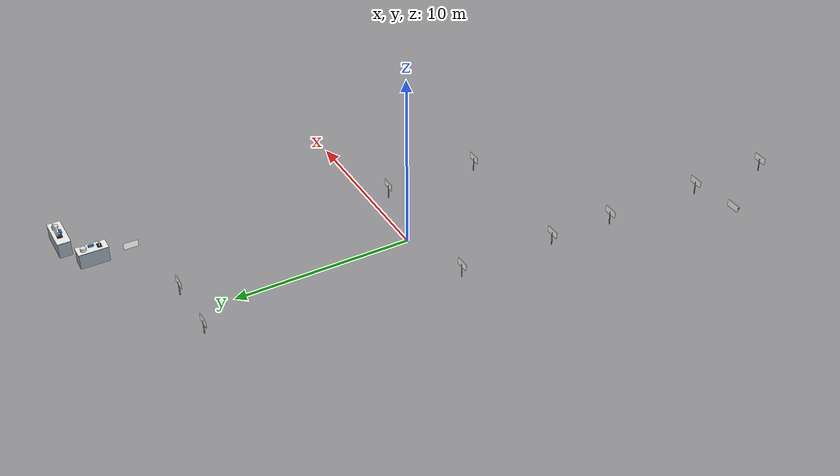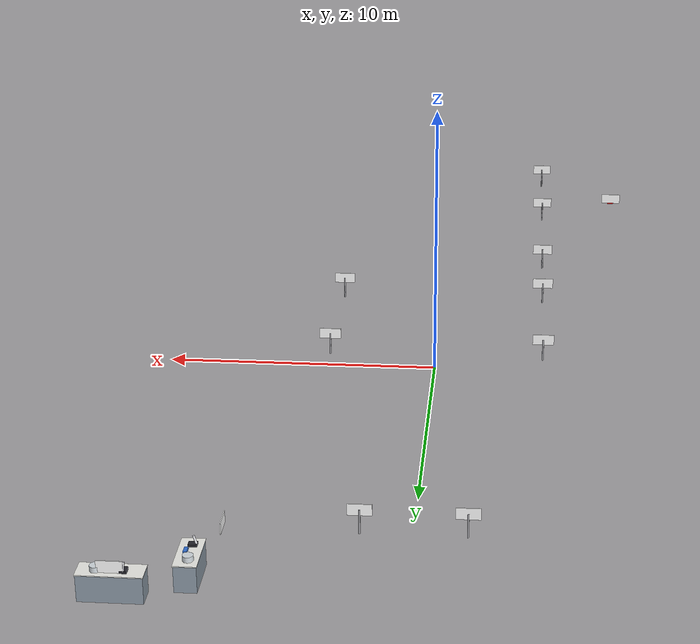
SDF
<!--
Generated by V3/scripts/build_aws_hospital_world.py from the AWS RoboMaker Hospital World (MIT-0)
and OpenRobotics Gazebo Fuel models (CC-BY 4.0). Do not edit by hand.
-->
<sdf version="1.9">
 <world name="realistic_facility_world">
  <gravity>0 0 -9.8</gravity>
  <physics name="default_physics" default="true" type="ode">
   <max_step_size>0.005</max_step_size>
   <real_time_factor>1.0</real_time_factor>
   <real_time_update_rate>200</real_time_update_rate>
  </physics>
  <plugin filename="gz-sim-physics-system" name="gz::sim::systems::Physics"/>
  <plugin filename="gz-sim-user-commands-system" name="gz::sim::systems::UserCommands"/>
  <plugin filename="gz-sim-scene-broadcaster-system" name="gz::sim::systems::SceneBroadcaster"/>
  <plugin filename="gz-sim-sensors-system" name="gz::sim::systems::Sensors">
   <render_engine>ogre2</render_engine>
  </plugin>
  <plugin filename="gz-sim-imu-system" name="gz::sim::systems::Imu"/>
  <scene>
   <ambient>0.7 0.7 0.7 1</ambient>
   <background>0.75 0.8 0.85 1</background>
   <shadows>false</shadows>
   <grid>false</grid>
  </scene>
  <light type="directional" name="sun">
   <cast_shadows>false</cast_shadows>
   <pose>0 0 30 0 0 0</pose>
   <diffuse>0.85 0.85 0.85 1</diffuse>
   <specular>0.2 0.2 0.2 1</specular>
   <direction>-0.3 0.2 -0.9</direction>
  </light>
  <model name="ground_plane">
   <static>true</static>
   <link name="link">
    <collision name="collision">
     <geometry><plane><normal>0 0 1</normal><size>200 200</size></plane></geometry>
    </collision>
   </link>
  </model>
  <light type="point" name="v3_ceiling_light_0">
   <pose>0 13 2.9 0 0 0</pose>
   <diffuse>0.55 0.55 0.52 1</diffuse>
   <specular>0.05 0.05 0.05 1</specular>
   <attenuation>
    <range>9</range>
    <constant>0.4</constant>
    <linear>0.08</linear>
    <quadratic>0.01</quadratic>
   </attenuation>
   <cast_shadows>false</cast_shadows>
  </light>
  <light type="point" name="v3_ceiling_light_1">
   <pose>0 6 2.9 0 0 0</pose>
   <diffuse>0.55 0.55 0.52 1</diffuse>
   <specular>0.05 0.05 0.05 1</specular>
   <attenuation>
    <range>9</range>
    <constant>0.4</constant>
    <linear>0.08</linear>
    <quadratic>0.01</quadratic>
   </attenuation>
   <cast_shadows>false</cast_shadows>
  </light>
  <light type="point" name="v3_ceiling_light_2">
   <pose>-5 0 2.9 0 0 0</pose>
   <diffuse>0.55 0.55 0.52 1</diffuse>
   <specular>0.05 0.05 0.05 1</specular>
   <attenuation>
    <range>9</range>
    <constant>0.4</constant>
    <linear>0.08</linear>
    <quadratic>0.01</quadratic>
   </attenuation>
   <cast_shadows>false</cast_shadows>
  </light>
  <light type="point" name="v3_ceiling_light_3">
   <pose>5 0 2.9 0 0 0</pose>
   <diffuse>0.55 0.55 0.52 1</diffuse>
   <specular>0.05 0.05 0.05 1</specular>
   <attenuation>
    <range>9</range>
    <constant>0.4</constant>
    <linear>0.08</linear>
    <quadratic>0.01</quadratic>
   </attenuation>
   <cast_shadows>false</cast_shadows>
  </light>
  <light type="point" name="v3_ceiling_light_4">
   <pose>-5 -10 2.9 0 0 0</pose>
   <diffuse>0.55 0.55 0.52 1</diffuse>
   <specular>0.05 0.05 0.05 1</specular>
   <attenuation>
    <range>9</range>
    <constant>0.4</constant>
    <linear>0.08</linear>
    <quadratic>0.01</quadratic>
   </attenuation>
   <cast_shadows>false</cast_shadows>
  </light>
  <light type="point" name="v3_ceiling_light_5">
   <pose>5 -10 2.9 0 0 0</pose>
   <diffuse>0.55 0.55 0.52 1</diffuse>
   <specular>0.05 0.05 0.05 1</specular>
   <attenuation>
    <range>9</range>
    <constant>0.4</constant>
    <linear>0.08</linear>
    <quadratic>0.01</quadratic>
   </attenuation>
   <cast_shadows>false</cast_shadows>
  </light>
  <light type="point" name="v3_ceiling_light_6">
   <pose>0 -14.5 2.9 0 0 0</pose>
   <diffuse>0.55 0.55 0.52 1</diffuse>
   <specular>0.05 0.05 0.05 1</specular>
   <attenuation>
    <range>9</range>
    <constant>0.4</constant>
    <linear>0.08</linear>
    <quadratic>0.01</quadratic>
   </attenuation>
   <cast_shadows>false</cast_shadows>
  </light>
  <light type="point" name="v3_ceiling_light_7">
   <pose>-5 -20 2.9 0 0 0</pose>
   <diffuse>0.55 0.55 0.52 1</diffuse>
   <specular>0.05 0.05 0.05 1</specular>
   <attenuation>
    <range>9</range>
    <constant>0.4</constant>
    <linear>0.08</linear>
    <quadratic>0.01</quadratic>
   </attenuation>
   <cast_shadows>false</cast_shadows>
  </light>
  <light type="point" name="v3_ceiling_light_8">
   <pose>5 -20 2.9 0 0 0</pose>
   <diffuse>0.55 0.55 0.52 1</diffuse>
   <specular>0.05 0.05 0.05 1</specular>
   <attenuation>
    <range>9</range>
    <constant>0.4</constant>
    <linear>0.08</linear>
    <quadratic>0.01</quadratic>
   </attenuation>
   <cast_shadows>false</cast_shadows>
  </light>
  <light type="point" name="v3_ceiling_light_9">
   <pose>0 -24.5 2.9 0 0 0</pose>
   <diffuse>0.55 0.55 0.52 1</diffuse>
   <specular>0.05 0.05 0.05 1</specular>
   <attenuation>
    <range>9</range>
    <constant>0.4</constant>
    <linear>0.08</linear>
    <quadratic>0.01</quadratic>
   </attenuation>
   <cast_shadows>false</cast_shadows>
  </light>
  <light type="point" name="v3_ceiling_light_10">
   <pose>-9.5 -17 2.9 0 0 0</pose>
   <diffuse>0.55 0.55 0.52 1</diffuse>
   <specular>0.05 0.05 0.05 1</specular>
   <attenuation>
    <range>9</range>
    <constant>0.4</constant>
    <linear>0.08</linear>
    <quadratic>0.01</quadratic>
   </attenuation>
   <cast_shadows>false</cast_shadows>
  </light>
  <light type="point" name="v3_ceiling_light_11">
   <pose>9.5 -17 2.9 0 0 0</pose>
   <diffuse>0.55 0.55 0.52 1</diffuse>
   <specular>0.05 0.05 0.05 1</specular>
   <attenuation>
    <range>9</range>
    <constant>0.4</constant>
    <linear>0.08</linear>
    <quadratic>0.01</quadratic>
   </attenuation>
   <cast_shadows>false</cast_shadows>
  </light>
  <light type="point" name="v3_ceiling_light_12">
   <pose>9.4 14.6 2.9 0 0 0</pose>
   <diffuse>0.55 0.55 0.52 1</diffuse>
   <specular>0.05 0.05 0.05 1</specular>
   <attenuation>
    <range>9</range>
    <constant>0.4</constant>
    <linear>0.08</linear>
    <quadratic>0.01</quadratic>
   </attenuation>
   <cast_shadows>false</cast_shadows>
  </light>
  <light type="point" name="v3_ceiling_light_13">
   <pose>-9.4 14.6 2.9 0 0 0</pose>
   <diffuse>0.55 0.55 0.52 1</diffuse>
   <specular>0.05 0.05 0.05 1</specular>
   <attenuation>
    <range>9</range>
    <constant>0.4</constant>
    <linear>0.08</linear>
    <quadratic>0.01</quadratic>
   </attenuation>
   <cast_shadows>false</cast_shadows>
  </light>
  <light type="point" name="v3_ceiling_light_14">
   <pose>-9.5 -4 2.9 0 0 0</pose>
   <diffuse>0.55 0.55 0.52 1</diffuse>
   <specular>0.05 0.05 0.05 1</specular>
   <attenuation>
    <range>9</range>
    <constant>0.4</constant>
    <linear>0.08</linear>
    <quadratic>0.01</quadratic>
   </attenuation>
   <cast_shadows>false</cast_shadows>
  </light>
  <light type="point" name="v3_ceiling_light_15">
   <pose>9.5 -4 2.9 0 0 0</pose>
   <diffuse>0.55 0.55 0.52 1</diffuse>
   <specular>0.05 0.05 0.05 1</specular>
   <attenuation>
    <range>9</range>
    <constant>0.4</constant>
    <linear>0.08</linear>
    <quadratic>0.01</quadratic>
   </attenuation>
   <cast_shadows>false</cast_shadows>
  </light>
  <light type="point" name="v3_ceiling_light_16">
   <pose>5.5 -29 2.9 0 0 0</pose>
   <diffuse>0.55 0.55 0.52 1</diffuse>
   <specular>0.05 0.05 0.05 1</specular>
   <attenuation>
    <range>9</range>
    <constant>0.4</constant>
    <linear>0.08</linear>
    <quadratic>0.01</quadratic>
   </attenuation>
   <cast_shadows>false</cast_shadows>
  </light>
  <light type="point" name="v3_ceiling_light_17">
   <pose>-9.5 -28 2.9 0 0 0</pose>
   <diffuse>0.55 0.55 0.52 1</diffuse>
   <specular>0.05 0.05 0.05 1</specular>
   <attenuation>
    <range>9</range>
    <constant>0.4</constant>
    <linear>0.08</linear>
    <quadratic>0.01</quadratic>
   </attenuation>
   <cast_shadows>false</cast_shadows>
  </light>
  <model name="v3_lab_bench_1">
   <static>true</static>
   <pose>8.600 16.450 0 0 0 0.0000</pose>
   <link name="link">
    <collision name="body">
     <pose>0 0 0.44 0 0 0</pose>
     <geometry><box><size>2.0 0.7 0.88</size></box></geometry>
    </collision>
    <visual name="body">
     <pose>0 0 0.44 0 0 0</pose>
     <geometry><box><size>2.0 0.7 0.88</size></box></geometry>
     <material><ambient>0.55 0.6 0.65 1</ambient><diffuse>0.55 0.6 0.65 1</diffuse></material>
    </visual>
    <visual name="top">
     <pose>0 0 0.895 0 0 0</pose>
     <geometry><box><size>2.04 0.74 0.03</size></box></geometry>
     <material><ambient>0.95 0.95 0.93 1</ambient><diffuse>0.95 0.95 0.93 1</diffuse></material>
    </visual>
    <visual name="microscope_base">
     <pose>-0.4 0.05 0.95 0 0 0</pose>
     <geometry><box><size>0.22 0.28 0.08</size></box></geometry>
     <material><ambient>0.15 0.15 0.18 1</ambient><diffuse>0.15 0.15 0.18 1</diffuse></material>
    </visual>
    <visual name="microscope_arm">
     <pose>-0.4 0.12 1.1 0.3 0 0</pose>
     <geometry><cylinder><radius>0.035</radius><length>0.3</length></cylinder></geometry>
     <material><ambient>0.9 0.9 0.92 1</ambient><diffuse>0.9 0.9 0.92 1</diffuse></material>
    </visual>
    <visual name="centrifuge">
     <pose>0.45 0.05 1.0 0 0 0</pose>
     <geometry><cylinder><radius>0.17</radius><length>0.18</length></cylinder></geometry>
     <material><ambient>0.85 0.88 0.9 1</ambient><diffuse>0.85 0.88 0.9 1</diffuse></material>
    </visual>
    <visual name="rack">
     <pose>0.0 -0.1 0.96 0 0 0</pose>
     <geometry><box><size>0.3 0.12 0.1</size></box></geometry>
     <material><ambient>0.2 0.45 0.85 1</ambient><diffuse>0.2 0.45 0.85 1</diffuse></material>
    </visual>
   </link>
  </model>
  <model name="v3_lab_bench_2">
   <static>true</static>
   <pose>6.500 15.300 0 0 0 1.5708</pose>
   <link name="link">
    <collision name="body">
     <pose>0 0 0.44 0 0 0</pose>
     <geometry><box><size>1.6 0.7 0.88</size></box></geometry>
    </collision>
    <visual name="body">
     <pose>0 0 0.44 0 0 0</pose>
     <geometry><box><size>1.6 0.7 0.88</size></box></geometry>
     <material><ambient>0.55 0.6 0.65 1</ambient><diffuse>0.55 0.6 0.65 1</diffuse></material>
    </visual>
    <visual name="top">
     <pose>0 0 0.895 0 0 0</pose>
     <geometry><box><size>1.6400000000000001 0.74 0.03</size></box></geometry>
     <material><ambient>0.95 0.95 0.93 1</ambient><diffuse>0.95 0.95 0.93 1</diffuse></material>
    </visual>
    <visual name="microscope_base">
     <pose>-0.4 0.05 0.95 0 0 0</pose>
     <geometry><box><size>0.22 0.28 0.08</size></box></geometry>
     <material><ambient>0.15 0.15 0.18 1</ambient><diffuse>0.15 0.15 0.18 1</diffuse></material>
    </visual>
    <visual name="microscope_arm">
     <pose>-0.4 0.12 1.1 0.3 0 0</pose>
     <geometry><cylinder><radius>0.035</radius><length>0.3</length></cylinder></geometry>
     <material><ambient>0.9 0.9 0.92 1</ambient><diffuse>0.9 0.9 0.92 1</diffuse></material>
    </visual>
    <visual name="centrifuge">
     <pose>0.45 0.05 1.0 0 0 0</pose>
     <geometry><cylinder><radius>0.17</radius><length>0.18</length></cylinder></geometry>
     <material><ambient>0.85 0.88 0.9 1</ambient><diffuse>0.85 0.88 0.9 1</diffuse></material>
    </visual>
    <visual name="rack">
     <pose>0.0 -0.1 0.96 0 0 0</pose>
     <geometry><box><size>0.3 0.12 0.1</size></box></geometry>
     <material><ambient>0.2 0.45 0.85 1</ambient><diffuse>0.2 0.45 0.85 1</diffuse></material>
    </visual>
   </link>
  </model>
  <model name="v3_payload_blood_sample_carrier">
   <static>true</static>
   <pose>-7.150 -16.600 0.860 0 0 0</pose>
   <link name="link">
    <visual name="body">
     <geometry><box><size>0.26 0.18 0.14</size></box></geometry>
     <material><ambient>0.85 0.1 0.1 1</ambient><diffuse>0.85 0.1 0.1 1</diffuse></material>
    </visual>
    <visual name="lid_band">
     <pose>0 0 0.072 0 0 0</pose>
     <geometry><box><size>0.27 0.19 0.02</size></box></geometry>
     <material><ambient>0.95 0.95 0.95 1</ambient><diffuse>0.95 0.95 0.95 1</diffuse></material>
    </visual>
   </link>
  </model>
  <model name="v3_sign_collection_point">
   <static>true</static>
   <pose>-7.150 -16.300 1.120 0 0 3.1416</pose>
   <link name="link">
    <visual name="visual">
     <geometry><box><size>0.8 0.03 0.4</size></box></geometry>
     <material>
      <diffuse>1 1 1 1</diffuse>
      <ambient>1 1 1 1</ambient>
      <pbr>
       <metal>
        <albedo_map>/home/soham-darade/CV_Autonomous_Navigation/V3/models/v3_markers/collection_point.png</albedo_map>
        <metalness>0</metalness>
        <roughness>0.8</roughness>
       </metal>
      </pbr>
     </material>
    </visual>
   </link>
  </model>
  <model name="v3_sign_laboratory_test_point">
   <static>true</static>
   <pose>8.600 16.620 1.120 0 0 3.1416</pose>
   <link name="link">
    <visual name="visual">
     <geometry><box><size>0.8 0.03 0.4</size></box></geometry>
     <material>
      <diffuse>1 1 1 1</diffuse>
      <ambient>1 1 1 1</ambient>
      <pbr>
       <metal>
        <albedo_map>/home/soham-darade/CV_Autonomous_Navigation/V3/models/v3_markers/laboratory_test_point.png</albedo_map>
        <metalness>0</metalness>
        <roughness>0.8</roughness>
       </metal>
      </pbr>
     </material>
    </visual>
   </link>
  </model>
  <model name="sign_xws_laboratory">
   <static>true</static>
   <pose>-4.050 -21.000 0.850 0 0 3.1416</pose>
   <link name="link">
    <visual name="board_visual">
     <geometry><box><size>0.8 0.03 0.4</size></box></geometry>
     <material>
      <ambient>1 1 1 1</ambient>
      <diffuse>1 1 1 1</diffuse>
      <specular>0.2 0.2 0.2 1</specular>
      <emissive>0.08 0.08 0.08 1</emissive>
      <pbr>
       <metal>
        <albedo_map>/home/soham-darade/CV_Autonomous_Navigation/V3/hospital/signs/laboratory_straight.png</albedo_map>
        <roughness>0.2</roughness>
        <metalness>0</metalness>
       </metal>
      </pbr>
     </material>
    </visual>
    <collision name="pole">
     <pose>0 0 -0.425 0 0 0</pose>
     <geometry><cylinder><radius>0.03</radius><length>0.850</length></cylinder></geometry>
    </collision>
    <visual name="pole">
     <pose>0 0 -0.425 0 0 0</pose>
     <geometry><cylinder><radius>0.03</radius><length>0.850</length></cylinder></geometry>
     <material><ambient>0.6 0.6 0.62 1</ambient><diffuse>0.6 0.6 0.62 1</diffuse></material>
    </visual>
   </link>
  </model>
  <model name="sign_xwm_diagnostics">
   <static>true</static>
   <pose>-4.050 -16.300 0.850 0 0 3.1416</pose>
   <link name="link">
    <visual name="board_visual">
     <geometry><box><size>0.8 0.03 0.4</size></box></geometry>
     <material>
      <ambient>1 1 1 1</ambient>
      <diffuse>1 1 1 1</diffuse>
      <specular>0.2 0.2 0.2 1</specular>
      <emissive>0.08 0.08 0.08 1</emissive>
      <pbr>
       <metal>
        <albedo_map>/home/soham-darade/CV_Autonomous_Navigation/V3/hospital/signs/diagnostics_right.png</albedo_map>
        <roughness>0.2</roughness>
        <metalness>0</metalness>
       </metal>
      </pbr>
     </material>
    </visual>
    <collision name="pole">
     <pose>0 0 -0.425 0 0 0</pose>
     <geometry><cylinder><radius>0.03</radius><length>0.850</length></cylinder></geometry>
    </collision>
    <visual name="pole">
     <pose>0 0 -0.425 0 0 0</pose>
     <geometry><cylinder><radius>0.03</radius><length>0.850</length></cylinder></geometry>
     <material><ambient>0.6 0.6 0.62 1</ambient><diffuse>0.6 0.6 0.62 1</diffuse></material>
    </visual>
   </link>
  </model>
  <model name="sign_xwn_nursing">
   <static>true</static>
   <pose>-4.050 -10.400 0.850 0 0 3.1416</pose>
   <link name="link">
    <visual name="board_visual">
     <geometry><box><size>0.8 0.03 0.4</size></box></geometry>
     <material>
      <ambient>1 1 1 1</ambient>
      <diffuse>1 1 1 1</diffuse>
      <specular>0.2 0.2 0.2 1</specular>
      <emissive>0.08 0.08 0.08 1</emissive>
      <pbr>
       <metal>
        <albedo_map>/home/soham-darade/CV_Autonomous_Navigation/V3/hospital/signs/nursing_station_straight.png</albedo_map>
        <roughness>0.2</roughness>
        <metalness>0</metalness>
       </metal>
      </pbr>
     </material>
    </visual>
    <collision name="pole">
     <pose>0 0 -0.425 0 0 0</pose>
     <geometry><cylinder><radius>0.03</radius><length>0.850</length></cylinder></geometry>
    </collision>
    <visual name="pole">
     <pose>0 0 -0.425 0 0 0</pose>
     <geometry><cylinder><radius>0.03</radius><length>0.850</length></cylinder></geometry>
     <material><ambient>0.6 0.6 0.62 1</ambient><diffuse>0.6 0.6 0.62 1</diffuse></material>
    </visual>
   </link>
  </model>
  <model name="sign_cwm_reception">
   <static>true</static>
   <pose>-4.050 -1.000 0.850 0 0 3.1416</pose>
   <link name="link">
    <visual name="board_visual">
     <geometry><box><size>0.8 0.03 0.4</size></box></geometry>
     <material>
      <ambient>1 1 1 1</ambient>
      <diffuse>1 1 1 1</diffuse>
      <specular>0.2 0.2 0.2 1</specular>
      <emissive>0.08 0.08 0.08 1</emissive>
      <pbr>
       <metal>
        <albedo_map>/home/soham-darade/CV_Autonomous_Navigation/V3/hospital/signs/reception_straight.png</albedo_map>
        <roughness>0.2</roughness>
        <metalness>0</metalness>
       </metal>
      </pbr>
     </material>
    </visual>
    <collision name="pole">
     <pose>0 0 -0.425 0 0 0</pose>
     <geometry><cylinder><radius>0.03</radius><length>0.850</length></cylinder></geometry>
    </collision>
    <visual name="pole">
     <pose>0 0 -0.425 0 0 0</pose>
     <geometry><cylinder><radius>0.03</radius><length>0.850</length></cylinder></geometry>
     <material><ambient>0.6 0.6 0.62 1</ambient><diffuse>0.6 0.6 0.62 1</diffuse></material>
    </visual>
   </link>
  </model>
  <model name="sign_xwn_ward">
   <static>true</static>
   <pose>-4.050 -6.600 0.850 0 0 0.0000</pose>
   <link name="link">
    <visual name="board_visual">
     <geometry><box><size>0.8 0.03 0.4</size></box></geometry>
     <material>
      <ambient>1 1 1 1</ambient>
      <diffuse>1 1 1 1</diffuse>
      <specular>0.2 0.2 0.2 1</specular>
      <emissive>0.08 0.08 0.08 1</emissive>
      <pbr>
       <metal>
        <albedo_map>/home/soham-darade/CV_Autonomous_Navigation/V3/hospital/signs/ward_straight.png</albedo_map>
        <roughness>0.2</roughness>
        <metalness>0</metalness>
       </metal>
      </pbr>
     </material>
    </visual>
    <collision name="pole">
     <pose>0 0 -0.425 0 0 0</pose>
     <geometry><cylinder><radius>0.03</radius><length>0.850</length></cylinder></geometry>
    </collision>
    <visual name="pole">
     <pose>0 0 -0.425 0 0 0</pose>
     <geometry><cylinder><radius>0.03</radius><length>0.850</length></cylinder></geometry>
     <material><ambient>0.6 0.6 0.62 1</ambient><diffuse>0.6 0.6 0.62 1</diffuse></material>
    </visual>
   </link>
  </model>
  <model name="sign_xen_testing">
   <static>true</static>
   <pose>4.050 -6.600 0.850 0 0 0.0000</pose>
   <link name="link">
    <visual name="board_visual">
     <geometry><box><size>0.8 0.03 0.4</size></box></geometry>
     <material>
      <ambient>1 1 1 1</ambient>
      <diffuse>1 1 1 1</diffuse>
      <specular>0.2 0.2 0.2 1</specular>
      <emissive>0.08 0.08 0.08 1</emissive>
      <pbr>
       <metal>
        <albedo_map>/home/soham-darade/CV_Autonomous_Navigation/V3/hospital/signs/testing_straight.png</albedo_map>
        <roughness>0.2</roughness>
        <metalness>0</metalness>
       </metal>
      </pbr>
     </material>
    </visual>
    <collision name="pole">
     <pose>0 0 -0.425 0 0 0</pose>
     <geometry><cylinder><radius>0.03</radius><length>0.850</length></cylinder></geometry>
    </collision>
    <visual name="pole">
     <pose>0 0 -0.425 0 0 0</pose>
     <geometry><cylinder><radius>0.03</radius><length>0.850</length></cylinder></geometry>
     <material><ambient>0.6 0.6 0.62 1</ambient><diffuse>0.6 0.6 0.62 1</diffuse></material>
    </visual>
   </link>
  </model>
  <model name="sign_cen_laboratory">
   <static>true</static>
   <pose>4.050 -1.000 0.850 0 0 3.1416</pose>
   <link name="link">
    <visual name="board_visual">
     <geometry><box><size>0.8 0.03 0.4</size></box></geometry>
     <material>
      <ambient>1 1 1 1</ambient>
      <diffuse>1 1 1 1</diffuse>
      <specular>0.2 0.2 0.2 1</specular>
      <emissive>0.08 0.08 0.08 1</emissive>
      <pbr>
       <metal>
        <albedo_map>/home/soham-darade/CV_Autonomous_Navigation/V3/hospital/signs/laboratory_straight.png</albedo_map>
        <roughness>0.2</roughness>
        <metalness>0</metalness>
       </metal>
      </pbr>
     </material>
    </visual>
    <collision name="pole">
     <pose>0 0 -0.425 0 0 0</pose>
     <geometry><cylinder><radius>0.03</radius><length>0.850</length></cylinder></geometry>
    </collision>
    <visual name="pole">
     <pose>0 0 -0.425 0 0 0</pose>
     <geometry><cylinder><radius>0.03</radius><length>0.850</length></cylinder></geometry>
     <material><ambient>0.6 0.6 0.62 1</ambient><diffuse>0.6 0.6 0.62 1</diffuse></material>
    </visual>
   </link>
  </model>
  <model name="sign_le_laboratory">
   <static>true</static>
   <pose>5.820 13.400 0.850 0 0 1.5708</pose>
   <link name="link">
    <visual name="board_visual">
     <geometry><box><size>0.8 0.03 0.4</size></box></geometry>
     <material>
      <ambient>1 1 1 1</ambient>
      <diffuse>1 1 1 1</diffuse>
      <specular>0.2 0.2 0.2 1</specular>
      <emissive>0.08 0.08 0.08 1</emissive>
      <pbr>
       <metal>
        <albedo_map>/home/soham-darade/CV_Autonomous_Navigation/V3/hospital/signs/laboratory_left.png</albedo_map>
        <roughness>0.2</roughness>
        <metalness>0</metalness>
       </metal>
      </pbr>
     </material>
    </visual>
   </link>
  </model>
  <model name="sign_lobby_reception">
   <static>true</static>
   <pose>-1.700 12.300 0.850 0 0 0.0000</pose>
   <link name="link">
    <visual name="board_visual">
     <geometry><box><size>0.8 0.03 0.4</size></box></geometry>
     <material>
      <ambient>1 1 1 1</ambient>
      <diffuse>1 1 1 1</diffuse>
      <specular>0.2 0.2 0.2 1</specular>
      <emissive>0.08 0.08 0.08 1</emissive>
      <pbr>
       <metal>
        <albedo_map>/home/soham-darade/CV_Autonomous_Navigation/V3/hospital/signs/reception_straight.png</albedo_map>
        <roughness>0.2</roughness>
        <metalness>0</metalness>
       </metal>
      </pbr>
     </material>
    </visual>
    <collision name="pole">
     <pose>0 0 -0.425 0 0 0</pose>
     <geometry><cylinder><radius>0.03</radius><length>0.850</length></cylinder></geometry>
    </collision>
    <visual name="pole">
     <pose>0 0 -0.425 0 0 0</pose>
     <geometry><cylinder><radius>0.03</radius><length>0.850</length></cylinder></geometry>
     <material><ambient>0.6 0.6 0.62 1</ambient><diffuse>0.6 0.6 0.62 1</diffuse></material>
    </visual>
   </link>
  </model>
  <model name="sign_lobby_pharmacy">
   <static>true</static>
   <pose>1.700 12.300 0.850 0 0 0.0000</pose>
   <link name="link">
    <visual name="board_visual">
     <geometry><box><size>0.8 0.03 0.4</size></box></geometry>
     <material>
      <ambient>1 1 1 1</ambient>
      <diffuse>1 1 1 1</diffuse>
      <specular>0.2 0.2 0.2 1</specular>
      <emissive>0.08 0.08 0.08 1</emissive>
      <pbr>
       <metal>
        <albedo_map>/home/soham-darade/CV_Autonomous_Navigation/V3/hospital/signs/pharmacy_left.png</albedo_map>
        <roughness>0.2</roughness>
        <metalness>0</metalness>
       </metal>
      </pbr>
     </material>
    </visual>
    <collision name="pole">
     <pose>0 0 -0.425 0 0 0</pose>
     <geometry><cylinder><radius>0.03</radius><length>0.850</length></cylinder></geometry>
    </collision>
    <visual name="pole">
     <pose>0 0 -0.425 0 0 0</pose>
     <geometry><cylinder><radius>0.03</radius><length>0.850</length></cylinder></geometry>
     <material><ambient>0.6 0.6 0.62 1</ambient><diffuse>0.6 0.6 0.62 1</diffuse></material>
    </visual>
   </link>
  </model>
 </world>
</sdf>
